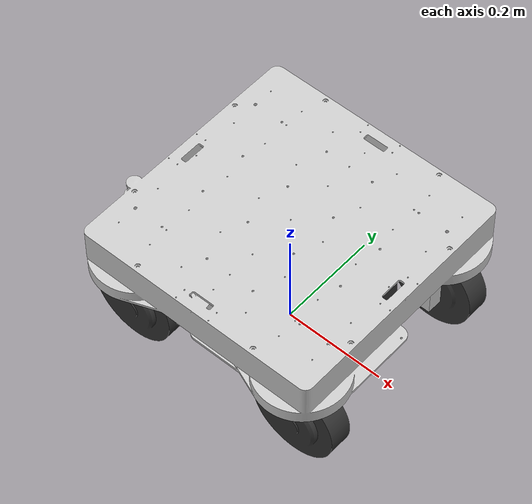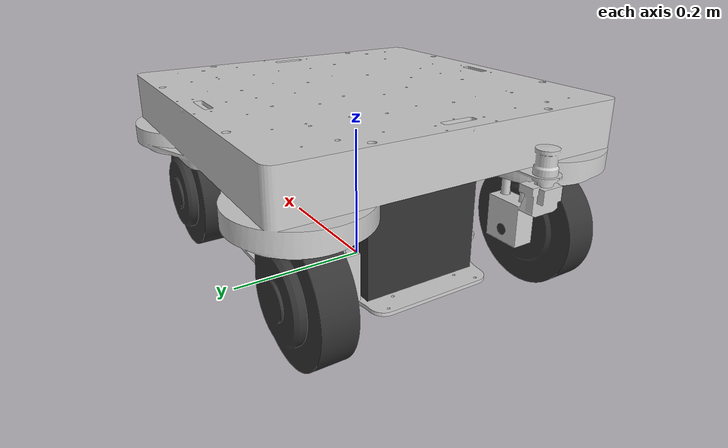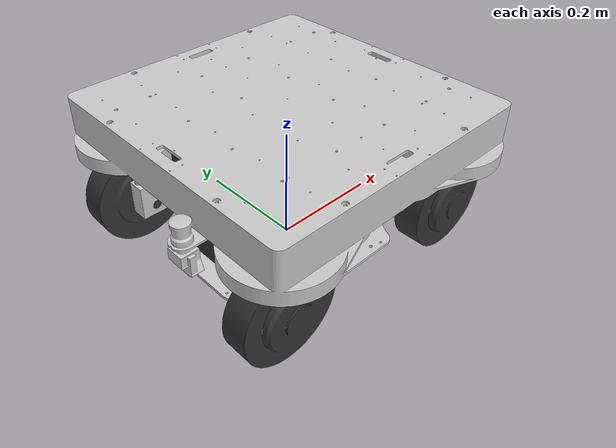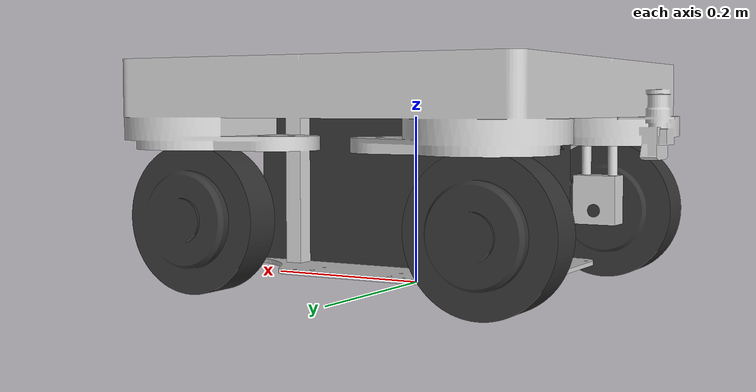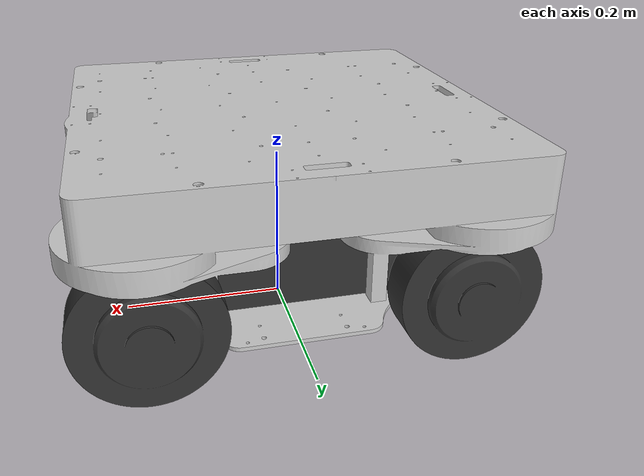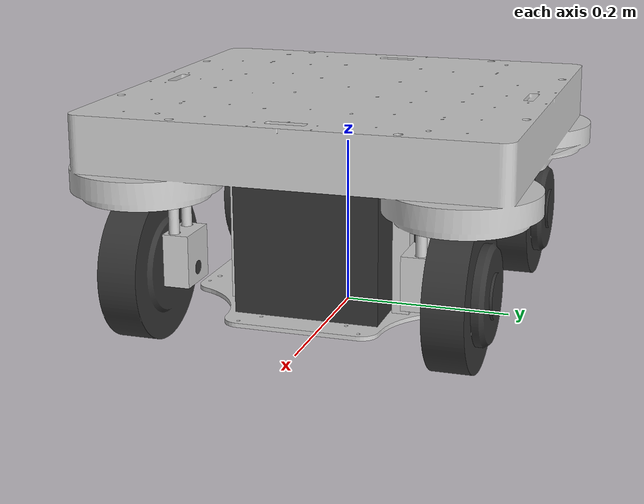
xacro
<?xml version="1.0"?>
<robot name="x120a_lb" xmlns:xacro="http://www.ros.org/wiki/xacro">

  <!-- Suspension values from the selected Isaac model, in SI units. -->
  <xacro:property name="suspension_stiffness" value="58800"/>
  <xacro:property name="suspension_damping" value="300.0"/>
  <xacro:property name="suspension_friction" value="0.5"/>
  <xacro:property name="suspension_stroke" value="0.0135"/>
  <xacro:property name="suspension_force" value="793.8"/>
  <!-- Actuator values from the selected Isaac USD, SI units. -->
  <xacro:property name="wheel_max_torque" value="18.0"/>
  <xacro:property name="wheel_max_velocity" value="25.8823529412"/>
  <xacro:property name="wheel_max_acceleration" value="19.4117647059"/>
  <xacro:property name="wheel_drive_damping" value="1000.0"/>
  <xacro:property name="steering_max_torque" value="16.25"/>
  <xacro:property name="steering_max_velocity" value="32.5436777449"/>
  <xacro:property name="steering_max_acceleration" value="97.6310332346"/>
  <xacro:property name="steering_drive_damping" value="1000.0"/>
  <xacro:property name="steering_position_p_gain" value="12.56"/>

   <xacro:include filename="$(find fwdsrover_description)/urdf/materials.xacro"/>
   <xacro:include filename="$(find fwdsrover_description)/urdf/actuators.xacro"/>
   <xacro:include filename="$(find fwdsrover_description)/urdf/x120a_lb.gazebo"/>

  <!-- Options are selected here, without launch/YAML tuning overrides. -->
  <xacro:property name="enable_tg30" value="false"/>
  <xacro:if value="${enable_tg30}">
    <xacro:include filename="$(find vs_rover_options_description)/urdf/lrf/tg30_x120a_lb.xacro"/>
  </xacro:if>
  <!-- OPTION: Bumper -->
  <!-- A camera-stay model has not been supplied for this rover. -->

  <!-- Battery mass (kg) -->
  <xacro:property name="battery_mass" value="35.0"/>

  <link name="base_footprint"/>

  <link name="base_link">
    <inertial>
      <origin xyz="0 0 0.075"/>
      <mass value="15"/>
      <inertia
        ixx="0.12128076034316"
        ixy="0.00120136894281"
        ixz="-0.00048291958805"
        iyy="0.12342190392259"
        iyz="-0.00033717869722"
        izz="0.13609112422642"/>
    </inertial>
    <visual>
      <geometry>
        <mesh filename="package://fwdsrover_description/meshes/x120a_lb/base_link.stl"
              scale="0.001 0.001 0.001"/>
      </geometry>
      <material name="silver"/>
    </visual>
    <collision>
      <origin xyz="0 0 0.206"/>
      <geometry>
        <box size="0.476 0.476 0.070"/>
      </geometry>
    </collision>
  </link>

  <link name="battery_link">
    <inertial>
      <origin xyz="0.000013 -0.000279 0.138114" rpy="0 0 0"/>
      <mass value="${battery_mass}"/>
      <inertia
        ixx="${4.499953e-01 * (battery_mass / 35.0)}"
        ixy="${1.546052e-04 * (battery_mass / 35.0)}"
        ixz="${1.399568e-05 * (battery_mass / 35.0)}"
        iyy="${2.183216e-01 * (battery_mass / 35.0)}"
        iyz="${4.094297e-04 * (battery_mass / 35.0)}"
        izz="${3.978825e-01 * (battery_mass / 35.0)}"/>
    </inertial>
    <visual>
      <geometry>
        <mesh filename="package://fwdsrover_description/meshes/x120a_lb/battery.stl"
              scale="0.001 0.001 0.001"/>
      </geometry>
      <material name="dark_grey"/>
    </visual>
    <collision>
      <geometry>
        <mesh filename="package://fwdsrover_description/meshes/x120a_lb/battery.stl"
              scale="0.001 0.001 0.001"/>
      </geometry>
    </collision>
  </link>

  <joint name="base_joint" type="fixed">
    <origin xyz="0 0 0" rpy="0 0 0"/>
    <parent link="base_footprint"/>
    <child link="base_link"/>
  </joint>

  <joint name="battery_joint" type="fixed">
    <origin xyz="0 0 0" rpy="0 0 ${radians(-90)}"/>
    <parent link="base_link"/>
    <child link="battery_link"/>
  </joint>

  <!-- Auto inertia macros -->

  <!-- Solid cylinder inertia (axis Z) -->
  <xacro:macro name="inertia_cylinder" params="m r h">
    <xacro:property name="Izz" value="${0.5 * m * r * r}"/>
    <xacro:property name="Ixx" value="${(1.0/12.0) * m * (3*r*r + h*h)}"/>
    <inertia ixx="${Ixx}" ixy="0" ixz="0"
             iyy="${Ixx}" iyz="0"
             izz="${Izz}"/>
  </xacro:macro>

  <!-- Solid box inertia -->
  <xacro:macro name="inertia_box" params="m x y z">
    <inertia
      ixx="${(1.0/12.0) * m * (y*y + z*z)}"
      ixy="0" ixz="0"
      iyy="${(1.0/12.0) * m * (x*x + z*z)}"
      iyz="0"
      izz="${(1.0/12.0) * m * (x*x + y*y)}"/>
  </xacro:macro>

  <!-- Link macros (mesh-based inertia) -->

  <!-- Joint base: cylinder -->
  <xacro:macro name="joint_link" params="name m r h">
    <link name="${name}">
      <inertial>
        <origin xyz="0.0 -0.016887 -0.027546"/>
        <mass value="${m}"/>
        <inertia
          ixx="${4.558148e-04 * (m / 0.229)}"
          ixy="0.0"
          ixz="0.0"
          iyy="${4.067504e-04 * (m / 0.229)}"
          iyz="${-8.573901e-05 * (m / 0.229)}"
          izz="${3.836429e-04 * (m / 0.229)}"/>
      </inertial>
      <visual>
        <geometry>
          <mesh filename="package://fwdsrover_description/meshes/x120a_lb/joint.stl"
                scale="0.001 0.001 0.001"/>
        </geometry>
        <material name="silver"/>
      </visual>
      <collision>
        <origin xyz="0 0 -0.007"/>
        <geometry>
          <cylinder radius="${r}" length="${h}"/>
        </geometry>
      </collision>
    </link>
  </xacro:macro>

  <!-- Suspension: box -->
  <xacro:macro name="sus_link" params="name m x y z">
    <link name="${name}">
      <inertial>
        <origin xyz="0.0 -0.045266 -0.028925"/>
        <mass value="${m}"/>
        <inertia
          ixx="${7.630819e-05 * (m / 0.195)}"
          ixy="0.0"
          ixz="0.0"
          iyy="${1.083020e-04 * (m / 0.195)}"
          iyz="${-2.655281e-07 * (m / 0.195)}"
          izz="${6.435011e-05 * (m / 0.195)}"/>
      </inertial>
      <visual>
        <geometry>
          <mesh filename="package://fwdsrover_description/meshes/x120a_lb/sus.stl"
                scale="0.001 0.001 0.001"/>
        </geometry>
        <material name="silver"/>
      </visual>
      <collision>
        <origin xyz="0 0 0.03"/>
        <geometry>
          <box size="${x} ${y} ${z}"/>
        </geometry>
      </collision>
    </link>
  </xacro:macro>

  <!-- Joint macros -->

  <xacro:macro name="steering_joint" params="name parent child xyz rpy">
    <joint name="${name}" type="revolute">
      <origin xyz="${xyz}" rpy="${rpy}"/>
      <axis xyz="0 0 1"/>
      <parent link="${parent}"/>
      <child link="${child}"/>
      <limit lower="-6.28319" upper="6.28319" effort="${steering_max_torque}" velocity="${steering_max_velocity}"/>
      <dynamics damping="0.1"/>
    </joint>
  </xacro:macro>

  <xacro:macro name="sus_joint" params="name parent child xyz">
    <joint name="${name}" type="prismatic">
      <origin xyz="${xyz}"/>
      <axis xyz="0 0 1"/>
      <parent link="${parent}"/>
      <child link="${child}"/>
      <limit lower="0.0" upper="${suspension_stroke}" effort="${suspension_force}" velocity="1.0"/>
      <dynamics damping="${suspension_damping}" friction="${suspension_friction}"/>
    </joint>
  </xacro:macro>

  <xacro:macro name="wheel_joint" params="name parent child axis_z xyz">
    <joint name="${name}" type="continuous">
      <origin xyz="${xyz}" rpy="${radians(-90)} 0 0"/>
      <axis xyz="0 0 ${axis_z}"/>
      <parent link="${parent}"/>
      <child link="${child}"/>
      <limit velocity="${wheel_max_velocity}" effort="${wheel_max_torque}"/>
      <dynamics damping="0.3" friction="0.5"/>
    </joint>
  </xacro:macro>

  <!-- Wheel unit (all auto inertia except base) -->

  <xacro:macro name="wheel_unit"
    params="prefix steering_xyz steering_rpy wheel_axis_z">

    <!-- constants (from original model) -->
    <xacro:property name="joint_m" value="0.229"/>
    <xacro:property name="joint_r" value="0.05"/>
    <xacro:property name="joint_h" value="0.014"/>

    <xacro:property name="sus_m" value="0.195"/>
    <xacro:property name="sus_x" value="0.05"/>
    <xacro:property name="sus_y" value="0.03"/>
    <xacro:property name="sus_z" value="0.06"/>

    <xacro:property name="wheel_m" value="3.0"/>
    <xacro:property name="wheel_r" value="0.085"/>
    <xacro:property name="wheel_h" value="0.045"/>

    <xacro:joint_link name="${prefix}_joint_1"
                      m="${joint_m}" r="${joint_r}" h="${joint_h}"/>

    <xacro:sus_link name="${prefix}_sus_1"
                    m="${sus_m}" x="${sus_x}" y="${sus_y}" z="${sus_z}"/>

    <link name="${prefix}_wheel_1">
      <inertial>
        <origin xyz="0.0 0.0 0.029125"/>
        <mass value="${wheel_m}"/>
        <inertia
          ixx="${5.718281e-03 * (wheel_m / 3.0)}"
          ixy="0.0"
          ixz="0.0"
          iyy="${5.718281e-03 * (wheel_m / 3.0)}"
          iyz="0.0"
          izz="${9.844412e-03 * (wheel_m / 3.0)}"/>
      </inertial>
      <visual>
        <geometry>
          <mesh filename="package://fwdsrover_description/meshes/x120a_lb/wheel.stl"
                scale="0.001 0.001 0.001"/>
        </geometry>
        <material name="dark_grey"/>
      </visual>
      <collision>
        <origin xyz="0 0 0.027"/>
        <geometry>
          <cylinder radius="${wheel_r}" length="${wheel_h}"/>
        </geometry>
      </collision>
    </link>

    <xacro:steering_joint
      name="${prefix}_steering_joint"
      parent="base_link"
      child="${prefix}_joint_1"
      xyz="${steering_xyz}"
      rpy="${steering_rpy}"/>

    <xacro:sus_joint
      name="${prefix}_sus_joint"
      parent="${prefix}_joint_1"
      child="${prefix}_sus_1"
      xyz="${sus_joint_x} ${sus_joint_y} ${sus_joint_z}"/>

    <xacro:wheel_joint
      name="${prefix}_wheel_joint"
      parent="${prefix}_sus_1"
      child="${prefix}_wheel_1"
      axis_z="${wheel_axis_z}"
      xyz="${wheel_joint_x} ${wheel_joint_y} ${wheel_joint_z}"/>

  </xacro:macro>

  <!-- Steering base position (tuning parameters) -->
  <!-- Change only these 3 values when adjusting steering joints -->

  <xacro:property name="steer_x" value="0.18"/>
  <xacro:property name="steer_y" value="0.18"/>
  <xacro:property name="steer_z" value="0.193"/>

  <!-- Suspension joint base position (tuning parameters) -->
  <xacro:property name="sus_joint_x" value="0.0"/>
  <xacro:property name="sus_joint_y" value="0.0"/>
  <xacro:property name="sus_joint_z" value="-0.065"/>

  <!-- Wheel joint base position (tuning parameters) -->
  <xacro:property name="wheel_joint_x" value="0.0"/>
  <xacro:property name="wheel_joint_y" value="-0.027"/>
  <xacro:property name="wheel_joint_z" value="-0.043"/>

  <!-- Wheel instances -->

  <xacro:wheel_unit prefix="front_left"
                    steering_xyz="${steer_x} ${steer_y} ${steer_z}"
                    steering_rpy="0 0 0"
                    wheel_axis_z="1"/>

  <xacro:wheel_unit prefix="front_right"
                    steering_xyz="${steer_x} ${-steer_y} ${steer_z}"
                    steering_rpy="0 0 ${radians(180)}"
                    wheel_axis_z="-1"/>

  <xacro:wheel_unit prefix="back_right"
                    steering_xyz="${-steer_x} ${-steer_y} ${steer_z}"
                    steering_rpy="0 0 ${radians(180)}"
                    wheel_axis_z="-1"/>

  <xacro:wheel_unit prefix="back_left"
                    steering_xyz="${-steer_x} ${steer_y} ${steer_z}"
                    steering_rpy="0 0 0"
                    wheel_axis_z="1"/>

</robot>

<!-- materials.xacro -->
<robot name="materials" xmlns:xacro="http://www.ros.org/wiki/xacro">

  <material name="silver">
    <color rgba="0.800 0.800 0.800 1.000" />
  </material>

  <material name="dark_silver">
    <color rgba="0.400 0.400 0.400 1.000" />
  </material>

  <material name="dark_grey">
    <color rgba="0.200 0.200 0.200 1.000" />
  </material>

  <material name="black">
    <color rgba="0.100 0.100 0.100 1.000" />
  </material>

</robot>

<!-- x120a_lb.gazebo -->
<robot name="x120a" xmlns:xacro="http://www.ros.org/wiki/xacro">

  <xacro:property name="body_color"  value="Gazebo/Silver"/>
  <xacro:property name="wheel_color" value="Gazebo/DarkGrey"/>
  <xacro:property name="battery_color" value="Gazebo/DarkGrey"/>
  <xacro:property name="wb22_45_k_per_spring" value="29400"/>
  <xacro:property name="sus_spring_parallel_count" value="2"/>

  <gazebo reference="base_link">
    <material>Gazebo/Silver</material>
    <mu1>0.2</mu1>
    <mu2>0.2</mu2>
    <self_collide>false</self_collide>
    <turnGravityOff>false</turnGravityOff>
  </gazebo>

  <gazebo reference="battery_link">
    <material>${battery_color}</material>
    <self_collide>false</self_collide>
    <turnGravityOff>false</turnGravityOff>
  </gazebo>

  <xacro:macro name="gazebo_steering" params="joint">
    <gazebo reference="${joint}">
      <material>${body_color}</material>
      <implicitSpringDamper>false</implicitSpringDamper>
      <erp>1.0</erp>
      <cfm>0.0</cfm>
      <limit>
        <erp>1.0</erp>
        <cfm>0.0</cfm>
      </limit>
      <stop_erp>0.99</stop_erp>
      <stop_cfm>0.0</stop_cfm>
    </gazebo>
  </xacro:macro>

  <xacro:macro name="gazebo_suspension" params="joint">
    <gazebo reference="${joint}">
      <implicitSpringDamper>false</implicitSpringDamper>
      <springReference>0.0</springReference>
      <springStiffness>${suspension_stiffness}</springStiffness>
    </gazebo>
  </xacro:macro>

  <xacro:macro name="gazebo_wheel" params="link">
    <gazebo reference="${link}">
      <material>${wheel_color}</material>
      <mu1>0.8</mu1>
      <mu2>0.4</mu2>
      <slip1>0.01</slip1>
      <slip2>0.01</slip2>
      <kp>1e6</kp>
      <kd>1.0</kd>
    </gazebo>
  </xacro:macro>

  <xacro:gazebo_steering joint="front_left_steering_joint"/>
  <xacro:gazebo_steering joint="front_right_steering_joint"/>
  <xacro:gazebo_steering joint="back_right_steering_joint"/>
  <xacro:gazebo_steering joint="back_left_steering_joint"/>

  <!-- Suspension -->
  <xacro:gazebo_suspension joint="front_left_sus_joint"/>
  <xacro:gazebo_suspension joint="front_right_sus_joint"/>
  <xacro:gazebo_suspension joint="back_right_sus_joint"/>
  <xacro:gazebo_suspension joint="back_left_sus_joint"/>

  <!-- Wheels -->
  <xacro:gazebo_wheel link="front_left_wheel_1"/>
  <xacro:gazebo_wheel link="front_right_wheel_1"/>
  <xacro:gazebo_wheel link="back_right_wheel_1"/>
  <xacro:gazebo_wheel link="back_left_wheel_1"/>

</robot>
